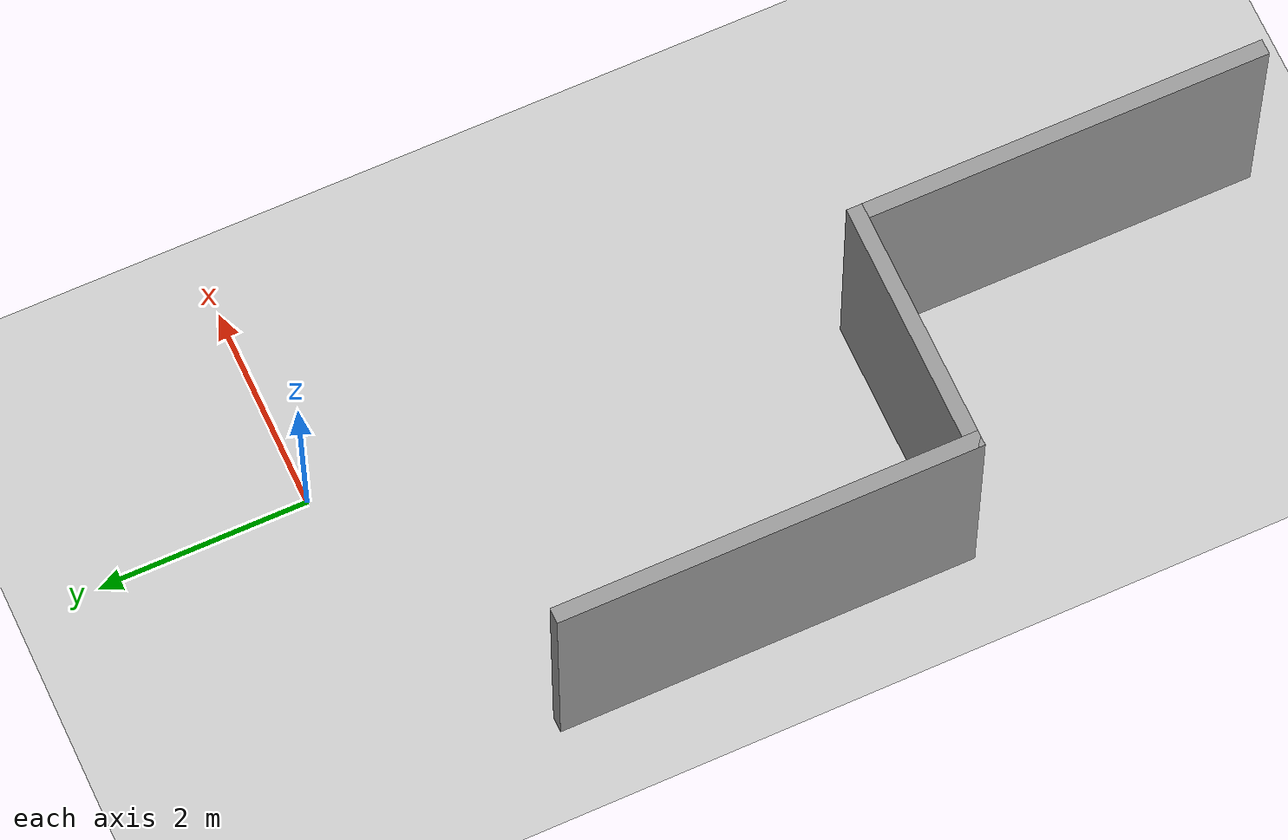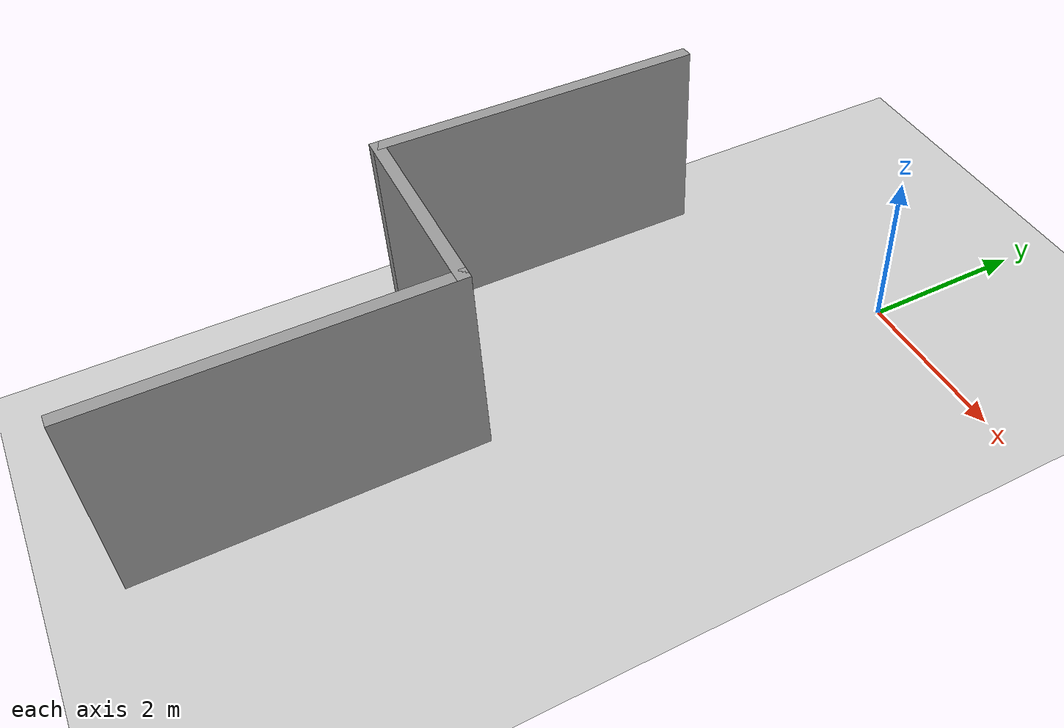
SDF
<?xml version="1.0"?>
<sdf version="1.6">
  <world name="default">

    <include>
      <uri>model://ground_plane</uri>
    </include>

    <include>
      <uri>model://sun</uri>
    </include>

    <scene>
      <shadows>false</shadows>
    </scene>

    <gui fullscreen='0'>
      <camera name='user_camera'>
        <pose frame=''>0.319654 -0.235002 9.29441 0 1.5138 0.009599</pose>
        <view_controller>orbit</view_controller>
        <projection_type>perspective</projection_type>
      </camera>
    </gui>

    <physics type="ode">
      <real_time_update_rate>1000.0</real_time_update_rate>
      <max_step_size>0.001</max_step_size>
      <real_time_factor>1</real_time_factor>
      <ode>
        <solver>
          <type>quick</type>
          <iters>150</iters>
          <precon_iters>0</precon_iters>
          <sor>1.400000</sor>
          <use_dynamic_moi_rescaling>1</use_dynamic_moi_rescaling>
        </solver>
        <constraints>
          <cfm>0.00001</cfm>
          <erp>0.2</erp>
          <contact_max_correcting_vel>2000.000000</contact_max_correcting_vel>
          <contact_surface_layer>0.01000</contact_surface_layer>
        </constraints>
      </ode>
    </physics>

    <model name="ChinaWall">
      <static>1</static>
      <include>
        <uri>model://ChinaWall</uri>
      </include>
    </model>

  </world>
</sdf>

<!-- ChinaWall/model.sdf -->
<sdf version='1.7'>
  <model name='ChinaWall'>
    <pose>-1.45465 -4.50138 0 0 -0 0</pose>
    <link name='Wall_5'>
      <collision name='Wall_5_Collision'>
        <geometry>
          <box>
            <size>4 0.15 2.5</size>
          </box>
        </geometry>
        <pose>0 0 1.25 0 -0 0</pose>
      </collision>
      <visual name='Wall_5_Visual'>
        <pose>0 0 1.25 0 -0 0</pose>
        <geometry>
          <box>
            <size>4 0.15 2.5</size>
          </box>
        </geometry>
        <material>
          <script>
            <uri>file://media/materials/scripts/gazebo.material</uri>
            <name>Gazebo/Grey</name>
          </script>
          <ambient>1 1 1 1</ambient>
        </material>
        <meta>
          <layer>0</layer>
        </meta>
      </visual>
      <pose>-1.37965 1.34862 0 0 -0 -1.5708</pose>
    </link>
    <link name='Wall_6'>
      <collision name='Wall_6_Collision'>
        <geometry>
          <box>
            <size>2.5 0.15 2.5</size>
          </box>
        </geometry>
        <pose>0 0 1.25 0 -0 0</pose>
      </collision>
      <visual name='Wall_6_Visual'>
        <pose>0 0 1.25 0 -0 0</pose>
        <geometry>
          <box>
            <size>2.5 0.15 2.5</size>
          </box>
        </geometry>
        <material>
          <script>
            <uri>file://media/materials/scripts/gazebo.material</uri>
            <name>Gazebo/Grey</name>
          </script>
          <ambient>1 1 1 1</ambient>
        </material>
        <meta>
          <layer>0</layer>
        </meta>
      </visual>
      <pose>-0.204649 -0.576379 0 0 -0 0</pose>
    </link>
    <link name='Wall_9'>
      <collision name='Wall_9_Collision'>
        <geometry>
          <box>
            <size>4 0.15 2.5</size>
          </box>
        </geometry>
        <pose>0 0 1.25 0 -0 0</pose>
      </collision>
      <visual name='Wall_9_Visual'>
        <pose>0 0 1.25 0 -0 0</pose>
        <geometry>
          <box>
            <size>4 0.15 2.5</size>
          </box>
        </geometry>
        <material>
          <script>
            <uri>file://media/materials/scripts/gazebo.material</uri>
            <name>Gazebo/Grey</name>
          </script>
          <ambient>1 1 1 1</ambient>
        </material>
        <meta>
          <layer>0</layer>
        </meta>
      </visual>
      <pose>0.970351 -2.50138 0 0 -0 -1.5708</pose>
    </link>
    <static>1</static>
  </model>
</sdf>
